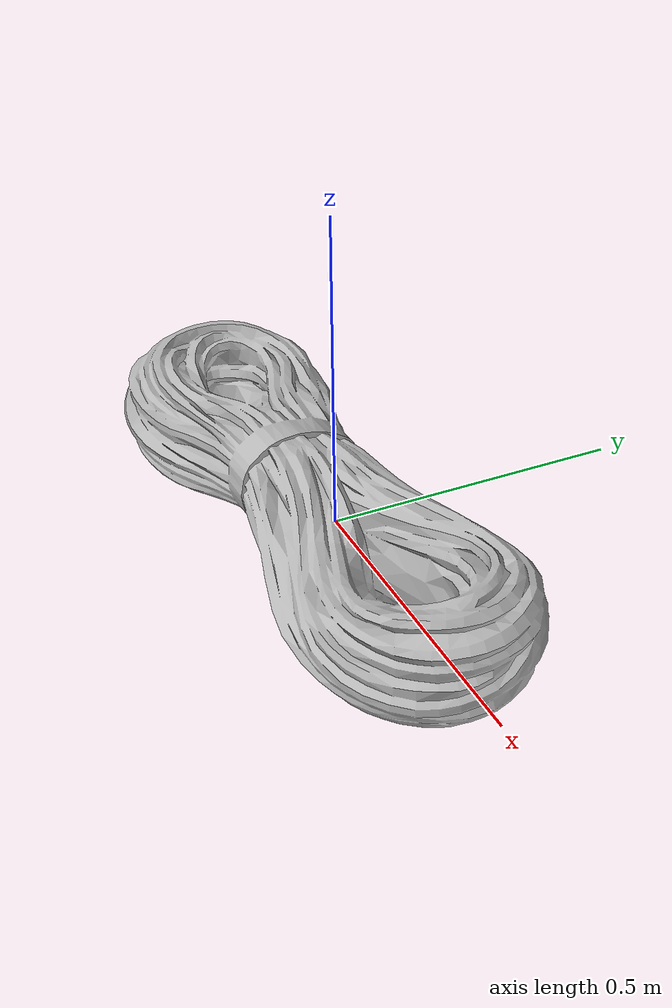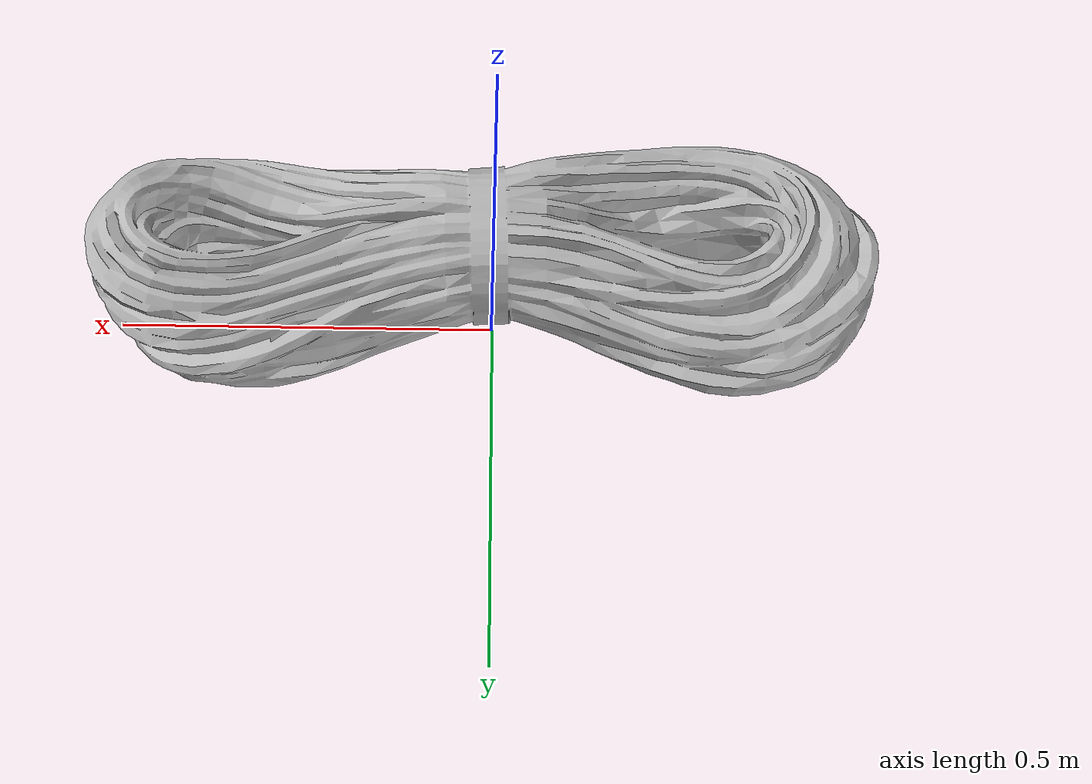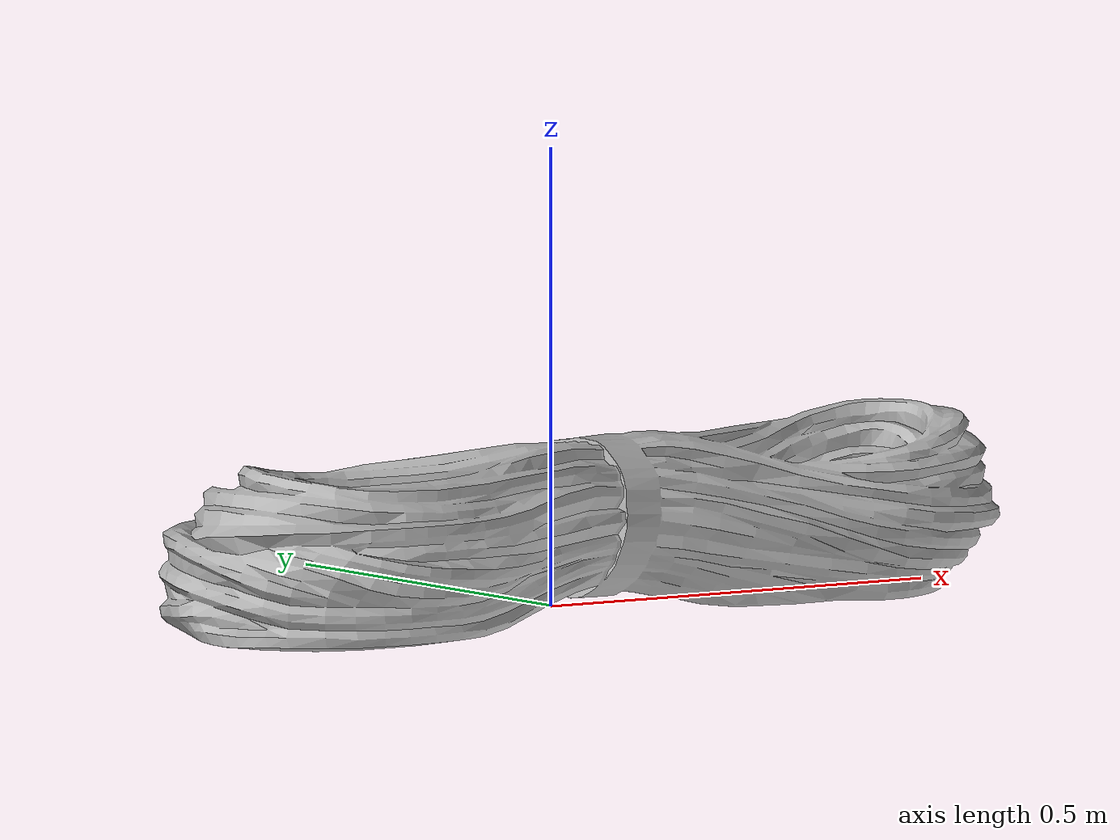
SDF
<?xml version="1.0"?>
<sdf version="1.6">
  <model name="Climbing Rope">
    <pose>0 0 0 0 0 0</pose>
    <static>true</static>
    <link name="link">
      <collision name="collision">
        <geometry>
          <mesh>
            <uri>model://Climbing Rope/meshes/rope.dae</uri>
         </mesh>
        </geometry>
      </collision>
      <visual name="visual">
        <geometry>
          <mesh>
            <uri>model://Climbing Rope/meshes/rope.dae</uri>
         </mesh>
        </geometry>
      </visual>
    </link>
  </model>
 </sdf>
